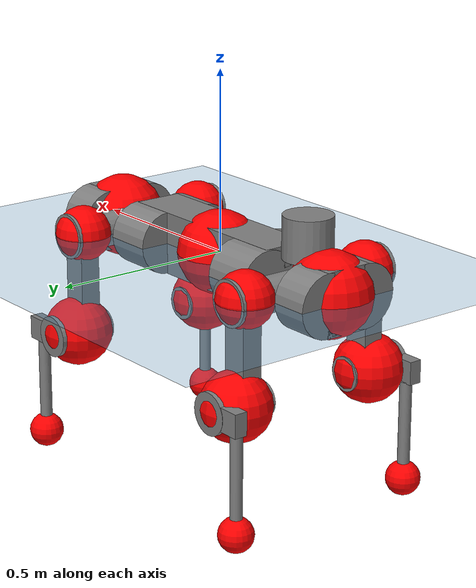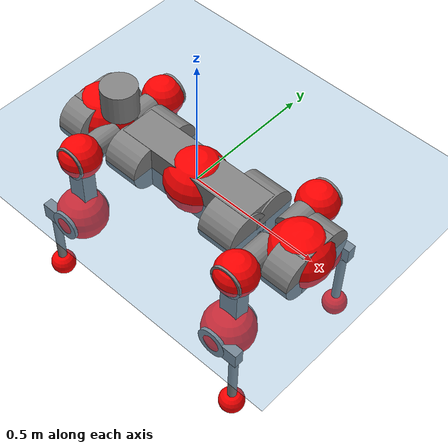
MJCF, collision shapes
<mujoco model="anymal_c">
  <compiler angle="radian" assetdir="assets" balanceinertia="true" inertiafromgeom="false"/>

  <option timestep="0.005" density="1.2" viscosity="2e-05"/>

  <size nkey="1"/>

  <visual>
    <quality shadowsize="8192"/>
    <map shadowclip="0.5"/>
  </visual>

  <default>
    <default class="/">
      <material specular="0" shininess="0.25"/>
      <geom contype="0" conaffinity="0" group="1" solref="-1000 -80"/>
      <site size="0.01 0.005 0.005" group="5"/>
      <general forcelimited="true" forcerange="-80 80" biastype="affine" gainprm="80" biasprm="0 -80 -2"/>
      <default class="anymal_c">
        <joint armature="0.01" damping="0.01" frictionloss="0.1"/>
        <default class="visual">
          <geom type="mesh" group="2"/>
          <default class="visual_zflip"/>
        </default>
        <default class="collision">
          <geom type="cylinder" group="3"/>
          <default class="foot">
            <geom size="0.03 0 0" type="sphere" condim="6" priority="1" friction="0.8 0.02 0.01" solimp="0.015 1 0.03"/>
          </default>
        </default>
      </default>
      <default class="reward_collision_sphere">
        <geom group="5" rgba="1 0 0 1"/>
      </default>
    </default>
  </default>

  <asset>
    <texture type="skybox" colorspace="auto" name="//unnamed_texture_0" builtin="gradient" rgb1="0.95 0.95 0.95" rgb2="0.95 0.95 0.95" width="100" height="600"/>
    <texture type="2d" colorspace="auto" name="texplane" builtin="checker" rgb1="0.345 0.575 0.748" rgb2="0.345 0.575 0.748" markrgb="1 1 1" width="512" height="512"/>
    <texture type="2d" colorspace="linear" name="base" file="base.png"/>
    <texture type="2d" colorspace="linear" name="top_shell" file="top_shell.png"/>
    <texture type="2d" colorspace="linear" name="bottom_shell" file="bottom_shell.png"/>
    <texture type="2d" colorspace="linear" name="remote" file="remote.png"/>
    <texture type="2d" colorspace="linear" name="hatch" file="hatch.png"/>
    <texture type="2d" colorspace="linear" name="handle" file="handle.png"/>
    <texture type="2d" colorspace="linear" name="face" file="face.png"/>
    <texture type="2d" colorspace="linear" name="battery" file="battery.png"/>
    <texture type="2d" colorspace="linear" name="lidar_cage" file="lidar_cage.png"/>
    <texture type="2d" colorspace="linear" name="depth_camera" file="depth_camera.png"/>
    <texture type="2d" colorspace="linear" name="wide_angle_camera" file="wide_angle_camera.png"/>
    <texture type="2d" colorspace="linear" name="lidar" file="lidar.png"/>
    <texture type="2d" colorspace="linear" name="drive" file="drive.png"/>
    <texture type="2d" colorspace="linear" name="hip_l" file="hip_l.png"/>
    <texture type="2d" colorspace="linear" name="shank_l" file="shank_l.png"/>
    <texture type="2d" colorspace="linear" name="foot" file="foot.png"/>
    <texture type="2d" colorspace="linear" name="thigh" file="thigh.png"/>
    <texture type="2d" colorspace="linear" name="shank_r" file="shank_r.png"/>
    <texture type="2d" colorspace="linear" name="hip_r" file="hip_r.png"/>
    <material name="MatPlane" class="/" texture="texplane" texuniform="true" texrepeat="2 2" specular="0.9" shininess="0.5"/>
    <material name="black_plastic" class="/" rgba="0.007 0.007 0.007 1"/>
    <material name="green" class="/" rgba="0.052 0.178 0.033 1"/>
    <material name="red" class="/" rgba="0.178 0.006 0.005 1"/>
    <material name="yellow" class="/" rgba="0.178 0.119 0.006 1"/>
    <material name="lwl" class="/" rgba="0.8 0.8 0.8 1"/>
    <material name="base" class="/" texture="base"/>
    <material name="top_shell" class="/" texture="top_shell"/>
    <material name="bottom_shell" class="/" texture="bottom_shell"/>
    <material name="hip_l" class="/" texture="hip_l"/>
    <material name="thigh" class="/" texture="thigh"/>
    <material name="shank_l" class="/" texture="shank_l"/>
    <material name="foot" class="/" texture="foot"/>
    <material name="hip_r" class="/" texture="hip_r"/>
    <material name="shank" class="/" texture="shank_r"/>
    <material name="hatch" class="/" texture="hatch"/>
    <material name="remote" class="/" texture="remote"/>
    <material name="handle" class="/" texture="handle"/>
    <material name="face" class="/" texture="face"/>
    <material name="depth_camera" class="/" texture="depth_camera"/>
    <material name="wide_angle_camera" class="/" texture="wide_angle_camera"/>
    <material name="battery" class="/" texture="battery"/>
    <material name="lidar_cage" class="/" texture="lidar_cage"/>
    <material name="lidar" class="/" texture="lidar"/>
    <material name="drive" class="/" texture="drive"/>
    <mesh name="base_0" class="/" file="base_0.obj"/>
    <mesh name="base_1" class="/" file="base_1.obj"/>
    <mesh name="base_2" class="/" file="base_2.obj"/>
    <mesh name="base_3" class="/" file="base_3.obj"/>
    <mesh name="base_4" class="/" file="base_4.obj"/>
    <mesh name="base_5" class="/" file="base_5.obj"/>
    <mesh name="top_shell" class="/" file="top_shell.obj"/>
    <mesh name="bottom_shell" class="/" file="bottom_shell.obj"/>
    <mesh name="remote" class="/" file="remote.obj"/>
    <mesh name="handle" class="/" file="handle.obj"/>
    <mesh name="face" class="/" file="face.obj"/>
    <mesh name="wide_angle_camera" class="/" file="wide_angle_camera.obj"/>
    <mesh name="depth_camera" class="/" file="depth_camera.obj"/>
    <mesh name="battery" class="/" file="battery.obj"/>
    <mesh name="lidar_cage" class="/" file="lidar_cage.obj"/>
    <mesh name="lidar" class="/" file="lidar.obj"/>
    <mesh name="drive" class="/" file="drive.obj"/>
    <mesh name="hip_l" class="/" file="hip_l.obj"/>
    <mesh name="thigh" class="/" file="thigh.obj"/>
    <mesh name="shank_l" class="/" file="shank_l.obj"/>
    <mesh name="foot" class="/" file="foot.obj"/>
    <mesh name="hip_r" class="/" file="hip_r.obj"/>
    <mesh name="hatch" class="/" file="hatch.obj"/>
    <mesh name="shank_r" class="/" file="shank_r.obj"/>
  </asset>

  <worldbody>
    <geom name="floor" class="/" size="100 100 0.125" type="plane" group="0" material="MatPlane"/>
    <light name="toplight_shadow" class="/" pos="0 0 5" dir="0.0990148 0.0990148 -0.990148" type="directional" ambient="0.04 0.04 0.04" diffuse="0.55 0.55 0.55" specular="0.12 0.12 0.12"/>
    <light name="toplight_fill" class="/" pos="0 0 5" dir="0.0990148 0.0990148 -0.990148" type="directional" castshadow="false" ambient="0.04 0.04 0.04" diffuse="0.3 0.3 0.3" specular="0.08 0.08 0.08"/>
    <body name="trunk" childclass="anymal_c" pos="8.32129e-05 0.000779008 -0.000299159" quat="1 2.33172e-06 -1.90875e-05 -2.47603e-06">
      <inertial pos="0.00280231 0.000543965 0.0479311" quat="0.502227 0.499456 0.498019 0.500288" mass="17.5477" diaginertia="0.64036 0.406177 0.202359"/>
      <joint name="//unnamed_joint_0" type="free" armature="0" damping="0" frictionloss="0"/>
      <geom name="//unnamed_geom_1" class="visual" material="green" mesh="base_0"/>
      <geom name="//unnamed_geom_2" class="visual" material="yellow" mesh="base_1"/>
      <geom name="//unnamed_geom_3" class="visual" material="red" mesh="base_2"/>
      <geom name="//unnamed_geom_4" class="visual" material="black_plastic" mesh="base_3"/>
      <geom name="//unnamed_geom_5" class="visual" material="lwl" mesh="base_4"/>
      <geom name="//unnamed_geom_6" class="visual" material="base" mesh="base_5"/>
      <geom name="trunk_1" class="collision" size="0.280408 0.0676847 0.0870232" type="box"/>
      <geom name="trunk_2" class="collision" size="0.0870232 0.070102" pos="0.217157 0.0642041 0" quat="0.707107 0 0.707107 0"/>
      <geom name="trunk_3" class="collision" size="0.0870232 0.070102" pos="-0.217157 0.0642041 0" quat="0.707107 0 0.707107 0"/>
      <geom name="trunk_4" class="collision" size="0.0870232 0.070102" pos="0.217157 -0.0642041 0" quat="0.707107 0 0.707107 0"/>
      <geom name="trunk_5" class="collision" size="0.0870232 0.070102" pos="-0.217157 -0.0642041 0" quat="0.707107 0 0.707107 0"/>
      <geom name="//unnamed_geom_12" class="visual" material="top_shell" mesh="top_shell"/>
      <geom name="//unnamed_geom_13" class="visual" material="bottom_shell" mesh="bottom_shell"/>
      <geom name="//unnamed_geom_14" class="visual" material="remote" mesh="remote"/>
      <geom name="//unnamed_geom_15" class="visual" material="handle" mesh="handle"/>
      <geom name="//unnamed_geom_16" class="visual" pos="0.413847 0 0" quat="1 0 0 0" material="face" mesh="face"/>
      <geom name="trunk_6" class="collision" size="0.0531808 0.0676847 0.0870232" pos="0.46876 0 0" type="box"/>
      <geom name="//unnamed_geom_18" class="collision" size="0.0870232 0.0531808" pos="0.46876 0.0642041 0" quat="0.707107 0 0.707107 0"/>
      <geom name="//unnamed_geom_19" class="collision" size="0.0870232 0.0531808" pos="0.46876 -0.0642041 0" quat="0.707107 0 0.707107 0"/>
      <geom name="//unnamed_geom_20" class="visual" pos="0.460922 0 -0.0286654" quat="0.965926 0 0.258819 0" material="depth_camera" mesh="depth_camera"/>
      <geom name="//unnamed_geom_21" class="visual" pos="0.512191 0 0.0147476" material="wide_angle_camera" mesh="wide_angle_camera"/>
      <geom name="//unnamed_geom_22" class="visual_zflip" pos="-0.413847 0 0" quat="0 0 0 1" material="face" mesh="face"/>
      <geom name="trunk_7" class="collision" size="0.0531808 0.0676847 0.0870232" pos="-0.46876 0 0" quat="0 0 0 1" type="box"/>
      <geom name="//unnamed_geom_24" class="collision" size="0.0870232 0.0531808" pos="-0.46876 -0.0642041 0" quat="0 -0.707107 0 0.707107"/>
      <geom name="//unnamed_geom_25" class="collision" size="0.0870232 0.0531808" pos="-0.46876 0.0642041 0" quat="0 -0.707107 0 0.707107"/>
      <geom name="//unnamed_geom_26" class="visual" pos="-0.460922 0 -0.0286654" quat="0 -0.258819 0 0.965926" material="depth_camera" mesh="depth_camera"/>
      <geom name="//unnamed_geom_27" class="visual_zflip" pos="-0.512191 0 0.0147476" quat="0 0 0 1" material="wide_angle_camera" mesh="wide_angle_camera"/>
      <geom name="//unnamed_geom_28" class="visual" material="battery" mesh="battery"/>
      <geom name="//unnamed_geom_29" class="visual" pos="0 0.0690629 0.0287194" quat="0.683013 -0.183013 0.183013 0.683013" material="depth_camera" mesh="depth_camera"/>
      <geom name="//unnamed_geom_30" class="visual" pos="0 -0.0690629 0.0287194" quat="0.683013 0.183013 0.183013 -0.683013" material="depth_camera" mesh="depth_camera"/>
      <geom name="//unnamed_geom_31" class="visual" pos="-0.363426 0 0.0724083" quat="1 0 0 0" material="lidar_cage" mesh="lidar_cage"/>
      <geom name="trunk_8" class="collision" size="0.0676847 0.0580154" pos="-0.363426 0 0.131517"/>
      <geom name="//unnamed_geom_33" class="visual" pos="-0.363426 -3.191e-05 0.140088" quat="0.707107 0 0 -0.707107" material="lidar" mesh="lidar"/>
      <geom name="//unnamed_geom_34" class="visual" pos="0.299427 0.0954131 -1.17205e-09" quat="0.258819 0.965926 0 0" material="drive" mesh="drive"/>
      <geom name="//unnamed_geom_35" class="visual" pos="0.299427 -0.0954131 1.17205e-09" quat="0.258819 -0.965926 0 0" material="drive" mesh="drive"/>
      <geom name="//unnamed_geom_36" class="visual" pos="-0.299427 0.0954131 1.17205e-09" quat="0 0 0.965926 -0.258819" material="drive" mesh="drive"/>
      <geom name="//unnamed_geom_37" class="visual" pos="-0.299427 -0.0954131 -1.17205e-09" quat="0 0 -0.965926 -0.258819" material="drive" mesh="drive"/>
      <geom name="//unnamed_geom_38" class="visual" pos="0.115817 0 0.0719157" quat="1 0 0 0" material="hatch" mesh="hatch"/>
      <geom name="//unnamed_geom_39" class="reward_collision_sphere" size="0.116031"/>
      <geom name="//unnamed_geom_40" class="reward_collision_sphere" size="0.116031" pos="0.449291 0 0"/>
      <geom name="//unnamed_geom_41" class="reward_collision_sphere" size="0.116031" pos="-0.449291 0 0"/>
      <site name="imu" pos="0.244297 0.00423594 0.0494995" size="0.00966924"/>
      <camera name="track" pos="0 -1.8344 0" quat="0.707107 0.707107 0 0" mode="trackcom"/>
      <camera name="ego_camera" pos="0.449291 0 -0.0394059" quat="-0.5 -0.5 0.5 0.5"/>
      <body name="LF_HIP" pos="0.298936 0.0961582 -0.000470276" quat="0.258727 0.965951 -6.40399e-05 -0.000262822">
        <inertial pos="0.0567074 -0.0138092 -0.00838104" quat="-0.129117 0.709108 -0.135285 0.679847" mass="2.5321" diaginertia="0.00580873 0.00323194 0.00306373"/>
        <joint name="LF_HAA" pos="0 0 0" axis="0.999998 -0.00121662 -0.00143643" range="-0.707146 0.481294" armature="0.00975416" damping="0.0117754" frictionloss="0.092517"/>
        <geom name="//unnamed_geom_42" class="visual" pos="0 -6.89466e-05 1.13244e-05" quat="0.258819 -0.965926 0 0" material="hip_l" mesh="hip_l"/>
        <geom name="//unnamed_geom_43" class="visual" pos="0.0598056 -0.0714219 -0.041738" quat="0.183013 -0.683013 0.683013 0.183013" material="drive" mesh="drive"/>
        <geom name="//unnamed_geom_44" class="collision" size="0.0483462 0.0676847" pos="0.0598056 -0.0109696 -0.00680244" quat="-0.353553 -0.612372 0.612372 -0.353553"/>
        <body name="LF_THIGH" pos="0.0601933 -0.0665647 -0.0413344" quat="0.183429 -0.683157 0.682735 0.183097">
          <inertial pos="0.0301179 -0.0006573 -0.241927" quat="0.9934 -0.0062568 -0.0791594 0.082775" mass="2.77526" diaginertia="0.0299096 0.0193908 0.00386374"/>
          <joint name="LF_HFE" pos="0 0 0" axis="0.999999 -0.00132953 0.000539841" stiffness="0.00506367" range="-3.14784 3.13528" armature="0.00934592" damping="0.0117508" frictionloss="0.0974009"/>
          <geom name="//unnamed_geom_45" class="visual" pos="0.001616 2.54644e-06 0" quat="0.707107 0 0 -0.707107" material="thigh" mesh="thigh"/>
          <geom name="//unnamed_geom_46" class="collision" size="0.0628501 0.038677" pos="0.039937 0 0" quat="0.5 0.5 -0.5 -0.5"/>
          <geom name="//unnamed_geom_47" class="collision" size="0.0362597 0.0290077 0.13664" pos="0.0299527 0 -0.139215" quat="0.707107 0 0 -0.707107" type="box"/>
          <geom name="//unnamed_geom_48" class="visual" pos="0.100142 0 -0.280767" quat="1 0 0 0" material="drive" mesh="drive"/>
          <geom name="//unnamed_geom_49" class="collision" size="0.0483462 0.0676847" pos="0.0302522 0 -0.280767" quat="0.707107 0 0.707107 0"/>
          <geom name="//unnamed_geom_50" class="reward_collision_sphere" size="0.0773539" pos="0.0249606 0 0"/>
          <body name="LF_SHANK" pos="0.0996529 -0.000353207 -0.280811" quat="1 -0.00012912 -0.000205777 -0.000134378">
            <inertial pos="0.00457747 -0.0561348 -0.0797836" quat="0.992907 -0.116112 -0.00111165 -0.0255576" mass="0.532386" diaginertia="0.0101699 0.00599025 0.00103505"/>
            <joint name="LF_KFE" pos="0 0 0" axis="1 -0.000423006 0.000274656" range="-3.14507 3.13719" armature="0.0100749" damping="0.0101967" frictionloss="0.0964215"/>
            <geom name="//unnamed_geom_51" class="visual" pos="0.000526942 0.00280968 0" quat="0.707107 0 0 -0.707107" material="shank_l" mesh="shank_l"/>
            <geom name="LF_kfe_act" class="collision" size="0.0580154 0.0193385" pos="0.0199685 0 0" quat="0.5 0.5 -0.5 -0.5"/>
            <geom name="//unnamed_geom_53" class="collision" size="0.0555972 0.0326337 0.0183716" pos="0.0199685 -0.0527382 0" quat="0.5 0.5 -0.5 -0.5" type="box"/>
            <geom name="//unnamed_geom_54" class="visual" pos="0.0130293 -0.0797625 -0.33295" quat="0.382683 0 0 -0.92388" material="foot" mesh="foot"/>
            <geom name="LF_calf" class="collision" size="0.0169212 0.13658" pos="0.0130294 -0.0806679 -0.166475" quat="0.707107 0 0 -0.707107"/>
            <geom name="LF_foot" class="foot" size="0.0297081" pos="0.0130294 -0.0806679 -0.310784" quat="0.707107 0 0 -0.707107"/>
            <geom name="//unnamed_geom_57" class="reward_collision_sphere" size="0.0966924" pos="-0.0499212 0 0"/>
            <geom name="//unnamed_geom_58" class="reward_collision_sphere" size="0.0483462" pos="0.0130294 -0.0806679 -0.310784"/>
            <site name="LF_foot" class="foot" pos="0.0130294 -0.0806679 -0.310784" quat="0.707107 0 0 -0.707107" size="0.00966924"/>
          </body>
        </body>
      </body>
      <body name="RF_HIP" pos="0.299898 -0.0952558 0.000958455" quat="0.258888 -0.965907 -2.43226e-05 -4.41248e-05">
        <inertial pos="0.0564437 0.0149127 -0.00778875" quat="0.135238 0.678663 0.128233 0.71041" mass="2.51829" diaginertia="0.00576262 0.00315846 0.00301509"/>
        <joint name="RF_HAA" pos="0 0 0" axis="0.999996 -0.00271579 0.000214979" range="-0.494637 0.718774" armature="0.00990276" damping="0.011833" frictionloss="0.0979408"/>
        <geom name="//unnamed_geom_59" class="visual" pos="0 6.89461e-05 1.13244e-05" quat="0.258819 0.965926 0 0" material="hip_r" mesh="hip_r"/>
        <geom name="//unnamed_geom_60" class="visual" pos="0.0598056 0.0714219 -0.041738" quat="0.183013 0.683013 0.683013 -0.183013" material="drive" mesh="drive"/>
        <geom name="//unnamed_geom_61" class="collision" size="0.0483462 0.0676847" pos="0.0598056 0.0109696 -0.00680244" quat="-0.353553 0.612372 0.612372 0.353553"/>
        <body name="RF_THIGH" pos="0.0600793 0.0672185 -0.0427282" quat="0.182847 0.683156 0.682884 -0.183122">
          <inertial pos="0.0312227 -0.000485444 -0.24174" quat="0.992463 -0.00634796 -0.0803561 0.0922992" mass="2.7245" diaginertia="0.0296755 0.0192397 0.00384791"/>
          <joint name="RF_HFE" pos="0 0 0" axis="0.999999 -0.00154978 0.000162571" stiffness="0.00687807" range="-3.14183 3.13968" armature="0.00953926" damping="0.0121293" frictionloss="0.0967279"/>
          <geom name="//unnamed_geom_62" class="visual" pos="0.001616 2.54644e-06 0" quat="0.707107 0 0 -0.707107" material="thigh" mesh="thigh"/>
          <geom name="//unnamed_geom_63" class="collision" size="0.0628501 0.038677" pos="0.039937 0 0" quat="0.5 0.5 0.5 0.5"/>
          <geom name="//unnamed_geom_64" class="collision" size="0.0362597 0.0290077 0.13664" pos="0.0299527 0 -0.139215" quat="0.707107 0 0 0.707107" type="box"/>
          <geom name="//unnamed_geom_65" class="visual" pos="0.100142 0 -0.280767" quat="1 0 0 0" material="drive" mesh="drive"/>
          <geom name="//unnamed_geom_66" class="collision" size="0.0483462 0.0676847" pos="0.0302522 0 -0.280767" quat="0.707107 0 0.707107 0"/>
          <geom name="//unnamed_geom_67" class="reward_collision_sphere" size="0.0773539" pos="0.0249606 0 0"/>
          <body name="RF_SHANK" pos="0.0999038 3.1222e-05 -0.27968" quat="1 -0.000151236 0.000172396 -2.45172e-05">
            <inertial pos="0.00565258 0.0562566 -0.0801738" quat="0.992625 0.11776 4.22213e-05 0.0287709" mass="0.529825" diaginertia="0.0101341 0.00600322 0.00104321"/>
            <joint name="RF_KFE" pos="0 0 0" axis="0.999992 -0.000184115 -0.00399953" stiffness="0.000628861" range="-3.12754 3.13366" armature="0.00963493" damping="0.00718308" frictionloss="0.0992243"/>
            <geom name="//unnamed_geom_68" class="visual" pos="0.000526939 -0.00280968 0" quat="0.707107 0 0 0.707107" material="shank" mesh="shank_r"/>
            <geom name="RF_kfe_act" class="collision" size="0.0580154 0.0193385" pos="0.0199685 0 0" quat="0.5 0.5 0.5 0.5"/>
            <geom name="//unnamed_geom_70" class="collision" size="0.0555972 0.0326337 0.0183716" pos="0.0199685 0.0527382 0" quat="0.5 0.5 0.5 0.5" type="box"/>
            <geom name="//unnamed_geom_71" class="visual" pos="0.0130296 0.0797625 -0.33295" quat="0.382683 0 0 0.92388" material="foot" mesh="foot"/>
            <geom name="RF_calf" class="collision" size="0.0169212 0.13658" pos="0.0130294 0.0806679 -0.166475" quat="0.707107 0 0 0.707107"/>
            <geom name="RF_foot" class="foot" size="0.0302678" pos="0.0130294 0.0806679 -0.310784" quat="0.707107 0 0 0.707107"/>
            <geom name="//unnamed_geom_74" class="reward_collision_sphere" size="0.0966924" pos="-0.0499212 0 0"/>
            <geom name="//unnamed_geom_75" class="reward_collision_sphere" size="0.0483462" pos="0.0130294 0.0806679 -0.310784"/>
            <site name="RF_foot" class="foot" pos="0.0130294 0.0806679 -0.310784" quat="0.707107 0 0 0.707107" size="0.00966924"/>
          </body>
        </body>
      </body>
      <body name="LH_HIP" pos="-0.298575 0.0958903 0.000147645" quat="-6.37703e-05 8.95323e-06 0.96591 -0.258878">
        <inertial pos="0.0566182 0.0144368 -0.00880273" quat="0.134707 0.680712 0.127793 0.708628" mass="2.5253" diaginertia="0.00581473 0.00319092 0.00305582"/>
        <joint name="LH_HAA" pos="0 0 0" axis="1 -0.000753946 -0.000111268" range="-0.486644 0.72185" armature="0.00963137" damping="0.00741326" frictionloss="0.098174"/>
        <geom name="//unnamed_geom_76" class="visual" pos="0 6.89461e-05 1.13244e-05" quat="-0.258819 -0.965926 0 0" material="hip_r" mesh="hip_r"/>
        <geom name="//unnamed_geom_77" class="visual" pos="0.0598056 0.0714219 -0.041738" quat="0.183013 0.683013 0.683013 -0.183013" material="drive" mesh="drive"/>
        <geom name="//unnamed_geom_78" class="collision" size="0.0483462 0.0676847" pos="0.0598056 0.0109696 -0.00680244" quat="-0.353553 0.612372 0.612372 0.353553"/>
        <body name="LH_THIGH" pos="0.0601235 0.067018 -0.0424017" quat="0.183143 0.682918 0.683158 -0.182694">
          <inertial pos="0.0306775 0.000129982 -0.241906" quat="0.992537 -0.00248717 -0.0810984 0.0910296" mass="2.79891" diaginertia="0.029888 0.0194198 0.00390458"/>
          <joint name="LH_HFE" pos="0 0 0" axis="0.999997 -0.00027848 -0.00236397" range="-3.1271 3.12394" armature="0.00962883" damping="0.0102351" frictionloss="0.098175"/>
          <geom name="//unnamed_geom_79" class="visual" pos="0.001616 2.54644e-06 0" quat="0.707107 0 0 -0.707107" material="thigh" mesh="thigh"/>
          <geom name="//unnamed_geom_80" class="collision" size="0.0628501 0.038677" pos="0.039937 0 0" quat="0.5 0.5 -0.5 -0.5"/>
          <geom name="//unnamed_geom_81" class="collision" size="0.0362597 0.0290077 0.13664" pos="0.0299527 0 -0.139215" quat="0.707107 0 0 -0.707107" type="box"/>
          <geom name="//unnamed_geom_82" class="visual" pos="0.100142 0 -0.280767" quat="1 0 0 0" material="drive" mesh="drive"/>
          <geom name="//unnamed_geom_83" class="collision" size="0.0483462 0.0676847" pos="0.0302522 0 -0.280767" quat="0.707107 0 0.707107 0"/>
          <geom name="//unnamed_geom_84" class="reward_collision_sphere" size="0.0773539" pos="0.0249606 0 0"/>
          <body name="LH_SHANK" pos="0.101153 -0.0015594 -0.281074" quat="1 -0.000271617 9.83615e-05 -0.000153513">
            <inertial pos="0.00577311 0.0561661 -0.0795155" quat="0.99292 0.116019 -0.000852624 0.0254624" mass="0.521606" diaginertia="0.00993059 0.00594577 0.00102806"/>
            <joint name="LH_KFE" pos="0 0 0" axis="0.999997 0.000113998 0.00225018" range="-3.13914 3.15619" armature="0.00975481" damping="0.0113139" frictionloss="0.0960773"/>
            <geom name="//unnamed_geom_85" class="visual" pos="0.000526939 -0.00280968 0" quat="-0.707107 0 0 -0.707107" material="shank" mesh="shank_r"/>
            <geom name="LH_kfe_act" class="collision" size="0.0580154 0.0193385" pos="0.0199685 0 0" quat="0.5 0.5 -0.5 -0.5"/>
            <geom name="//unnamed_geom_87" class="collision" size="0.0555972 0.0326337 0.0183716" pos="0.0199685 0.0527382 0" quat="0.5 0.5 -0.5 -0.5" type="box"/>
            <geom name="//unnamed_geom_88" class="visual" pos="0.0130296 0.0797625 -0.33295" quat="-0.382683 0 0 -0.92388" material="foot" mesh="foot"/>
            <geom name="LH_calf" class="collision" size="0.0169212 0.13658" pos="0.0130294 0.0806679 -0.166475" quat="0.707107 0 0 -0.707107"/>
            <geom name="LH_foot" class="foot" size="0.0302061" pos="0.0130294 0.0806679 -0.310784" quat="0.707107 0 0 -0.707107"/>
            <geom name="//unnamed_geom_91" class="reward_collision_sphere" size="0.0966924" pos="-0.0499212 0 0"/>
            <geom name="//unnamed_geom_92" class="reward_collision_sphere" size="0.0483462" pos="0.0130294 0.0806679 -0.310784"/>
            <site name="LH_foot" class="foot" pos="0.0130294 0.0806679 -0.310784" quat="0.707107 0 0 -0.707107" size="0.00966924"/>
          </body>
        </body>
      </body>
      <body name="RH_HIP" pos="-0.298841 -0.0963105 0.000237269" quat="-0.000130563 -5.57452e-05 -0.965825 -0.259193">
        <inertial pos="0.0570552 -0.0146718 -0.00749809" quat="-0.130146 0.709685 -0.134378 0.679229" mass="2.49327" diaginertia="0.00570141 0.00317053 0.00302152"/>
        <joint name="RH_HAA" pos="0 0 0" axis="0.999994 -0.00236033 -0.00240817" stiffness="0.000866113" range="-0.721078 0.49634" armature="0.00965422" damping="0.00950747" frictionloss="0.0953693"/>
        <geom name="//unnamed_geom_93" class="visual" pos="0 -6.89466e-05 1.13244e-05" quat="-0.258819 0.965926 0 0" material="hip_l" mesh="hip_l"/>
        <geom name="//unnamed_geom_94" class="visual" pos="0.0598056 -0.0714219 -0.041738" quat="-0.183013 0.683013 -0.683013 -0.183013" material="drive" mesh="drive"/>
        <geom name="//unnamed_geom_95" class="collision" size="0.0483462 0.0676847" pos="0.0598056 -0.0109696 -0.00680244" quat="0.353553 0.612372 -0.612372 0.353553"/>
        <body name="RH_THIGH" pos="0.0596042 -0.0674017 -0.0417998" quat="-0.183006 0.683038 -0.682991 -0.183005">
          <inertial pos="0.0310165 0.000112174 -0.242657" quat="0.993206 -0.00503259 -0.0818685 0.0825469" mass="2.8033" diaginertia="0.0301859 0.0196274 0.00391973"/>
          <joint name="RH_HFE" pos="0 0 0" axis="1 0.000743058 -0.00043776" stiffness="0.00236999" range="-3.135 3.12749" armature="0.00972402" damping="0.00764418" frictionloss="0.0977106"/>
          <geom name="//unnamed_geom_96" class="visual" pos="0.001616 2.54644e-06 0" quat="0.707107 0 0 -0.707107" material="thigh" mesh="thigh"/>
          <geom name="//unnamed_geom_97" class="collision" size="0.0628501 0.038677" pos="0.039937 0 0" quat="0.5 0.5 0.5 0.5"/>
          <geom name="//unnamed_geom_98" class="collision" size="0.0362597 0.0290077 0.13664" pos="0.0299527 0 -0.139215" quat="0.707107 0 0 0.707107" type="box"/>
          <geom name="//unnamed_geom_99" class="visual" pos="0.100142 0 -0.280767" quat="1 0 0 0" material="drive" mesh="drive"/>
          <geom name="//unnamed_geom_100" class="collision" size="0.0483462 0.0676847" pos="0.0302522 0 -0.280767" quat="0.707107 0 0.707107 0"/>
          <geom name="//unnamed_geom_101" class="reward_collision_sphere" size="0.0773539" pos="0.0249606 0 0"/>
          <body name="RH_SHANK" pos="0.0988697 0.000667008 -0.280694" quat="1 -0.000117319 -0.000179465 -4.30133e-05">
            <inertial pos="0.00615393 -0.056055 -0.0799427" quat="0.992938 -0.11593 -0.00144869 -0.0251315" mass="0.533158" diaginertia="0.0100595 0.00596436 0.00104316"/>
            <joint name="RH_KFE" pos="0 0 0" axis="0.999987 -0.00263673 0.00424902" range="-3.11267 3.13361" armature="0.00976764" damping="0.00763051" frictionloss="0.0965587"/>
            <geom name="//unnamed_geom_102" class="visual" pos="0.000526942 0.00280968 0" quat="0.707107 0 0 -0.707107" material="shank_l" mesh="shank_l"/>
            <geom name="RH_kfe_act" class="collision" size="0.0580154 0.0193385" pos="0.0199685 0 0" quat="0.5 0.5 0.5 0.5"/>
            <geom name="//unnamed_geom_104" class="collision" size="0.0555972 0.0326337 0.0183716" pos="0.0199685 -0.0527382 0" quat="0.5 0.5 0.5 0.5" type="box"/>
            <geom name="//unnamed_geom_105" class="visual" pos="0.0130293 -0.0797625 -0.33295" quat="0.382683 0 0 -0.92388" material="foot" mesh="foot"/>
            <geom name="RH_calf" class="collision" size="0.0169212 0.13658" pos="0.0130294 -0.0806679 -0.166475" quat="0.707107 0 0 0.707107"/>
            <geom name="RH_foot" class="foot" size="0.028093" pos="0.0130294 -0.0806679 -0.310784" quat="0.707107 0 0 0.707107"/>
            <geom name="//unnamed_geom_108" class="reward_collision_sphere" size="0.0966924" pos="-0.0499212 0 0"/>
            <geom name="//unnamed_geom_109" class="reward_collision_sphere" size="0.0483462" pos="0.0130294 -0.0806679 -0.310784"/>
            <site name="RH_foot" class="foot" pos="0.0130294 -0.0806679 -0.310784" quat="0.707107 0 0 0.707107" size="0.00966924"/>
          </body>
        </body>
      </body>
    </body>
  </worldbody>

  <contact>
    <pair class="/" geom1="floor" geom2="LF_foot" name="//unnamed_contact_0"/>
    <pair class="/" geom1="floor" geom2="RF_foot" name="//unnamed_contact_1"/>
    <pair class="/" geom1="floor" geom2="LH_foot" name="//unnamed_contact_2"/>
    <pair class="/" geom1="floor" geom2="RH_foot" name="//unnamed_contact_3"/>
  </contact>

  <actuator>
    <general name="LF_HAA" class="/" joint="LF_HAA" forcerange="-80.1807 80.1807" gainprm="77.1047" biasprm="0 -77.1047 -1.85453"/>
    <general name="LF_HFE" class="/" joint="LF_HFE" forcerange="-79.8343 79.8343" gainprm="77.1047" biasprm="0 -77.1047 -1.85453"/>
    <general name="LF_KFE" class="/" joint="LF_KFE" forcerange="-76.3051 76.3051" gainprm="77.1047" biasprm="0 -77.1047 -1.85453"/>
    <general name="RF_HAA" class="/" joint="RF_HAA" forcerange="-78.0793 78.0793" gainprm="77.1047" biasprm="0 -77.1047 -1.85453"/>
    <general name="RF_HFE" class="/" joint="RF_HFE" forcerange="-79.0393 79.0393" gainprm="77.1047" biasprm="0 -77.1047 -1.85453"/>
    <general name="RF_KFE" class="/" joint="RF_KFE" forcerange="-74.923 74.923" gainprm="77.1047" biasprm="0 -77.1047 -1.85453"/>
    <general name="LH_HAA" class="/" joint="LH_HAA" forcerange="-77.5336 77.5336" gainprm="77.1047" biasprm="0 -77.1047 -1.85453"/>
    <general name="LH_HFE" class="/" joint="LH_HFE" forcerange="-78.9541 78.9541" gainprm="77.1047" biasprm="0 -77.1047 -1.85453"/>
    <general name="LH_KFE" class="/" joint="LH_KFE" forcerange="-79.1036 79.1036" gainprm="77.1047" biasprm="0 -77.1047 -1.85453"/>
    <general name="RH_HAA" class="/" joint="RH_HAA" forcerange="-77.5705 77.5705" gainprm="77.1047" biasprm="0 -77.1047 -1.85453"/>
    <general name="RH_HFE" class="/" joint="RH_HFE" forcerange="-78.067 78.067" gainprm="77.1047" biasprm="0 -77.1047 -1.85453"/>
    <general name="RH_KFE" class="/" joint="RH_KFE" forcerange="-77.4621 77.4621" gainprm="77.1047" biasprm="0 -77.1047 -1.85453"/>
  </actuator>

  <sensor>
    <gyro site="imu" name="imu_angular_velocity"/>
    <velocimeter site="imu" name="imu_linear_velocity"/>
    <framelinvel objtype="site" objname="LF_foot" name="LF_foot_global_linear_velocity"/>
    <framelinvel objtype="site" objname="RF_foot" name="RF_foot_global_linear_velocity"/>
    <framelinvel objtype="site" objname="LH_foot" name="LH_foot_global_linear_velocity"/>
    <framelinvel objtype="site" objname="RH_foot" name="RH_foot_global_linear_velocity"/>
  </sensor>

  <keyframe>
    <key name="home" qpos="0 0 0.55 1 0 0 0 0 0.4 -0.8 0 -0.4 0.8 0 -0.4 0.8 0 0.4 -0.8"/>
  </keyframe>
</mujoco>
